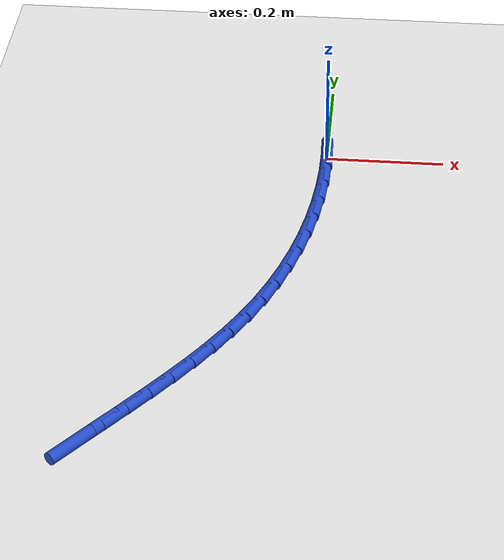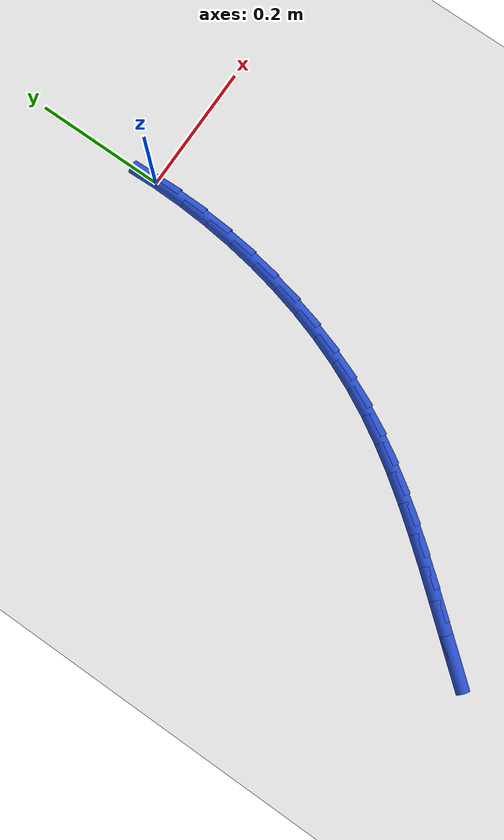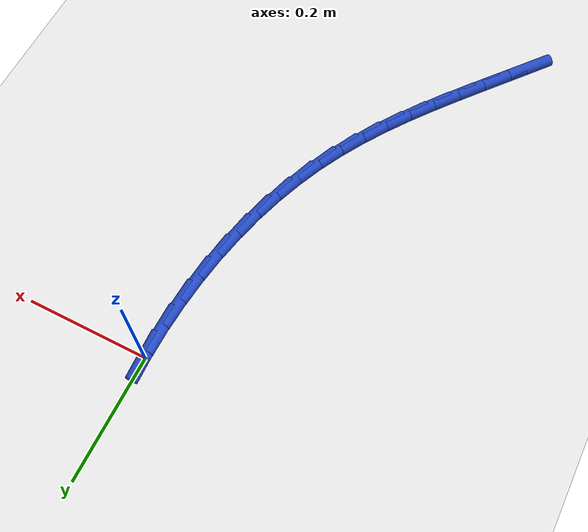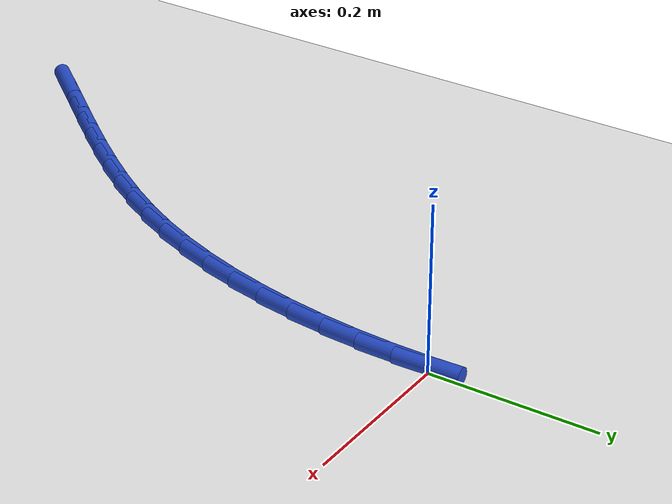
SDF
<sdf version="1.6">
 <world name="default">
  <model name="ground_plane">
   <static>1</static>
   <link name="link">
    <collision name="collision">
     <geometry><plane><normal>0 0 1</normal><size>100 100</size></plane></geometry>
     <surface><friction><ode><mu>100</mu><mu2>50</mu2></ode></friction></surface>
    </collision>
    <visual name="visual">
     <cast_shadows>0</cast_shadows>
     <geometry><plane><normal>0 0 1</normal><size>100 100</size></plane></geometry>
     <material>
      <script><uri>file://media/materials/scripts/gazebo.material</uri><name>Gazebo/WhiteGlow</name></script>
     </material>
    </visual>
   </link>
  </model>
  <model name="line">
   <link name="link_0">
    <pose>3.8163916471489756e-17 9.71445146547012e-17 0.01 0 1.57 -1.5379565727730287</pose>
    <collision name="collision">
     <geometry><cylinder><radius>0.01</radius><length>0.08</length></cylinder></geometry>
    </collision>
    <visual name="visual">
     <material>
      <script><name>Gazebo/Blue</name><uri>file://media/materials/scripts/gazebo.material</uri></script>
     </material>
     <geometry><cylinder><radius>0.01</radius><length>0.08</length></cylinder></geometry>
    </visual>
   </link>
   <link name="link_132">
    <pose>-0.3206116167665752 -0.7306456790572758 0.01 0 1.57 0.8793051872338442</pose>
    <collision name="collision">
     <geometry><cylinder><radius>0.01</radius><length>0.08</length></cylinder></geometry>
    </collision>
    <visual name="visual">
     <material>
      <script><name>Gazebo/Blue</name><uri>file://media/materials/scripts/gazebo.material</uri></script>
     </material>
     <geometry><cylinder><radius>0.01</radius><length>0.08</length></cylinder></geometry>
    </visual>
   </link>
   <link name="link_133">
    <pose>-0.28951754788711825 -0.693085473097489 0.01 0 1.57 0.8783182495826889</pose>
    <collision name="collision">
     <geometry><cylinder><radius>0.01</radius><length>0.08</length></cylinder></geometry>
    </collision>
    <visual name="visual">
     <material>
      <script><name>Gazebo/Blue</name><uri>file://media/materials/scripts/gazebo.material</uri></script>
     </material>
     <geometry><cylinder><radius>0.01</radius><length>0.08</length></cylinder></geometry>
    </visual>
   </link>
   <link name="link_134">
    <pose>-0.25919804693396614 -0.6565344083476227 0.01 0 1.57 0.8848812489796607</pose>
    <collision name="collision">
     <geometry><cylinder><radius>0.01</radius><length>0.08</length></cylinder></geometry>
    </collision>
    <visual name="visual">
     <material>
      <script><name>Gazebo/Blue</name><uri>file://media/materials/scripts/gazebo.material</uri></script>
     </material>
     <geometry><cylinder><radius>0.01</radius><length>0.08</length></cylinder></geometry>
    </visual>
   </link>
   <link name="link_135">
    <pose>-0.22982804294168724 -0.6206513253292714 0.01 0 1.57 0.8994847997849711</pose>
    <collision name="collision">
     <geometry><cylinder><radius>0.01</radius><length>0.08</length></cylinder></geometry>
    </collision>
    <visual name="visual">
     <material>
      <script><name>Gazebo/Blue</name><uri>file://media/materials/scripts/gazebo.material</uri></script>
     </material>
     <geometry><cylinder><radius>0.01</radius><length>0.08</length></cylinder></geometry>
    </visual>
   </link>
   <link name="link_136">
    <pose>-0.20158246494484852 -0.5850950645640283 0.01 0 1.57 0.9224857678418515</pose>
    <collision name="collision">
     <geometry><cylinder><radius>0.01</radius><length>0.08</length></cylinder></geometry>
    </collision>
    <visual name="visual">
     <material>
      <script><name>Gazebo/Blue</name><uri>file://media/materials/scripts/gazebo.material</uri></script>
     </material>
     <geometry><cylinder><radius>0.01</radius><length>0.08</length></cylinder></geometry>
    </visual>
   </link>
   <link name="link_137">
    <pose>-0.1746362419780182 -0.5495244665734876 0.01 0 1.57 0.954049341796175</pose>
    <collision name="collision">
     <geometry><cylinder><radius>0.01</radius><length>0.08</length></cylinder></geometry>
    </collision>
    <visual name="visual">
     <material>
      <script><name>Gazebo/Blue</name><uri>file://media/materials/scripts/gazebo.material</uri></script>
     </material>
     <geometry><cylinder><radius>0.01</radius><length>0.08</length></cylinder></geometry>
    </visual>
   </link>
   <link name="link_138">
    <pose>-0.14916430307576456 -0.5135983718792444 0.01 0 1.57 0.9940768616136767</pose>
    <collision name="collision">
     <geometry><cylinder><radius>0.01</radius><length>0.08</length></cylinder></geometry>
    </collision>
    <visual name="visual">
     <material>
      <script><name>Gazebo/Blue</name><uri>file://media/materials/scripts/gazebo.material</uri></script>
     </material>
     <geometry><cylinder><radius>0.01</radius><length>0.08</length></cylinder></geometry>
    </visual>
   </link>
   <link name="link_139">
    <pose>-0.12534157727265474 -0.47697562100289154 0.01 0 1.57 1.0421293247657557</pose>
    <collision name="collision">
     <geometry><cylinder><radius>0.01</radius><length>0.08</length></cylinder></geometry>
    </collision>
    <visual name="visual">
     <material>
      <script><name>Gazebo/Blue</name><uri>file://media/materials/scripts/gazebo.material</uri></script>
     </material>
     <geometry><cylinder><radius>0.01</radius><length>0.08</length></cylinder></geometry>
    </visual>
   </link>
   <link name="link_140">
    <pose>-0.10334299360325733 -0.43931505446602426 0.01 0 1.57 1.0973596669954242</pose>
    <collision name="collision">
     <geometry><cylinder><radius>0.01</radius><length>0.08</length></cylinder></geometry>
    </collision>
    <visual name="visual">
     <material>
      <script><name>Gazebo/Blue</name><uri>file://media/materials/scripts/gazebo.material</uri></script>
     </material>
     <geometry><cylinder><radius>0.01</radius><length>0.08</length></cylinder></geometry>
    </visual>
   </link>
   <link name="link_141">
    <pose>-0.083343356910782 -0.40027590170779936 0.01 0 1.57 1.1563166180535376</pose>
    <collision name="collision">
     <geometry><cylinder><radius>0.01</radius><length>0.08</length></cylinder></geometry>
    </collision>
    <visual name="visual">
     <material>
      <script><name>Gazebo/Blue</name><uri>file://media/materials/scripts/gazebo.material</uri></script>
     </material>
     <geometry><cylinder><radius>0.01</radius><length>0.08</length></cylinder></geometry>
    </visual>
   </link>
   <link name="link_142">
    <pose>-0.06547266690570164 -0.3596577038884261 0.01 0 1.57 1.2129827924346737</pose>
    <collision name="collision">
     <geometry><cylinder><radius>0.01</radius><length>0.08</length></cylinder></geometry>
    </collision>
    <visual name="visual">
     <material>
      <script><name>Gazebo/Blue</name><uri>file://media/materials/scripts/gazebo.material</uri></script>
     </material>
     <geometry><cylinder><radius>0.01</radius><length>0.08</length></cylinder></geometry>
    </visual>
   </link>
   <link name="link_143">
    <pose>-0.04974985388407261 -0.3176078270654027 0.01 0 1.57 1.2669110969311448</pose>
    <collision name="collision">
     <geometry><cylinder><radius>0.01</radius><length>0.08</length></cylinder></geometry>
    </collision>
    <visual name="visual">
     <material>
      <script><name>Gazebo/Blue</name><uri>file://media/materials/scripts/gazebo.material</uri></script>
     </material>
     <geometry><cylinder><radius>0.01</radius><length>0.08</length></cylinder></geometry>
    </visual>
   </link>
   <link name="link_144">
    <pose>-0.036176933104593245 -0.2743266084148942 0.01 0 1.57 1.3185467339072414</pose>
    <collision name="collision">
     <geometry><cylinder><radius>0.01</radius><length>0.08</length></cylinder></geometry>
    </collision>
    <visual name="visual">
     <material>
      <script><name>Gazebo/Blue</name><uri>file://media/materials/scripts/gazebo.material</uri></script>
     </material>
     <geometry><cylinder><radius>0.01</radius><length>0.08</length></cylinder></geometry>
    </visual>
   </link>
   <link name="link_145">
    <pose>-0.02475591982596281 -0.23001438511306874 0.01 0 1.57 1.3683256808028006</pose>
    <collision name="collision">
     <geometry><cylinder><radius>0.01</radius><length>0.08</length></cylinder></geometry>
    </collision>
    <visual name="visual">
     <material>
      <script><name>Gazebo/Blue</name><uri>file://media/materials/scripts/gazebo.material</uri></script>
     </material>
     <geometry><cylinder><radius>0.01</radius><length>0.08</length></cylinder></geometry>
    </visual>
   </link>
   <link name="link_146">
    <pose>-0.015488829306879764 -0.18487149433609124 0.01 0 1.57 1.4166722276994912</pose>
    <collision name="collision">
     <geometry><cylinder><radius>0.01</radius><length>0.08</length></cylinder></geometry>
    </collision>
    <visual name="visual">
     <material>
      <script><name>Gazebo/Blue</name><uri>file://media/materials/scripts/gazebo.material</uri></script>
     </material>
     <geometry><cylinder><radius>0.01</radius><length>0.08</length></cylinder></geometry>
    </visual>
   </link>
   <link name="link_147">
    <pose>-0.008377676806043125 -0.13909827326012897 0.01 0 1.57 1.4639995669139056</pose>
    <collision name="collision">
     <geometry><cylinder><radius>0.01</radius><length>0.08</length></cylinder></geometry>
    </collision>
    <visual name="visual">
     <material>
      <script><name>Gazebo/Blue</name><uri>file://media/materials/scripts/gazebo.material</uri></script>
     </material>
     <geometry><cylinder><radius>0.01</radius><length>0.08</length></cylinder></geometry>
    </visual>
   </link>
   <link name="link_148">
    <pose>-0.003424477582151789 -0.09289505906134915 0.01 0 1.57 1.5107124118626967</pose>
    <collision name="collision">
     <geometry><cylinder><radius>0.01</radius><length>0.08</length></cylinder></geometry>
    </collision>
    <visual name="visual">
     <material>
      <script><name>Gazebo/Blue</name><uri>file://media/materials/scripts/gazebo.material</uri></script>
     </material>
     <geometry><cylinder><radius>0.01</radius><length>0.08</length></cylinder></geometry>
    </visual>
   </link>
   <link name="link_149">
    <pose>-0.0006312468939044264 -0.046462188915916726 0.01 0 1.57 1.5572109130828826</pose>
    <collision name="collision">
     <geometry><cylinder><radius>0.01</radius><length>0.08</length></cylinder></geometry>
    </collision>
    <visual name="visual">
     <material>
      <script><name>Gazebo/Blue</name><uri>file://media/materials/scripts/gazebo.material</uri></script>
     </material>
     <geometry><cylinder><radius>0.01</radius><length>0.08</length></cylinder></geometry>
    </visual>
   </link>
  </model>
 </world>
</sdf>
